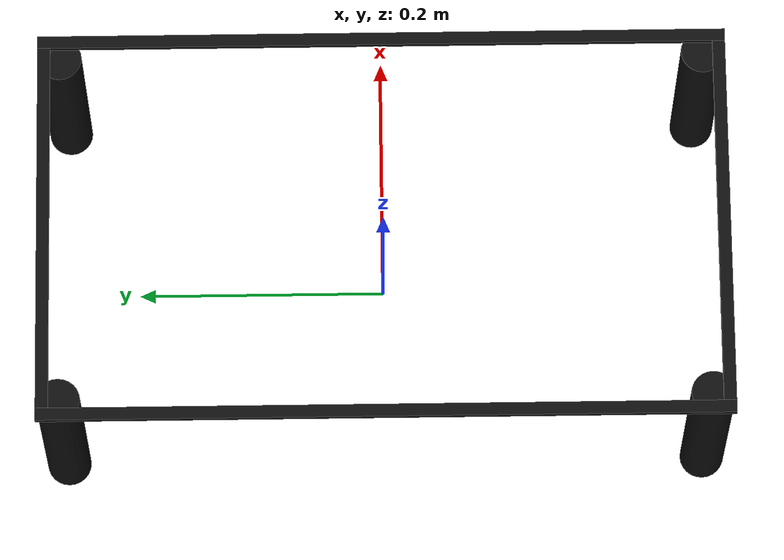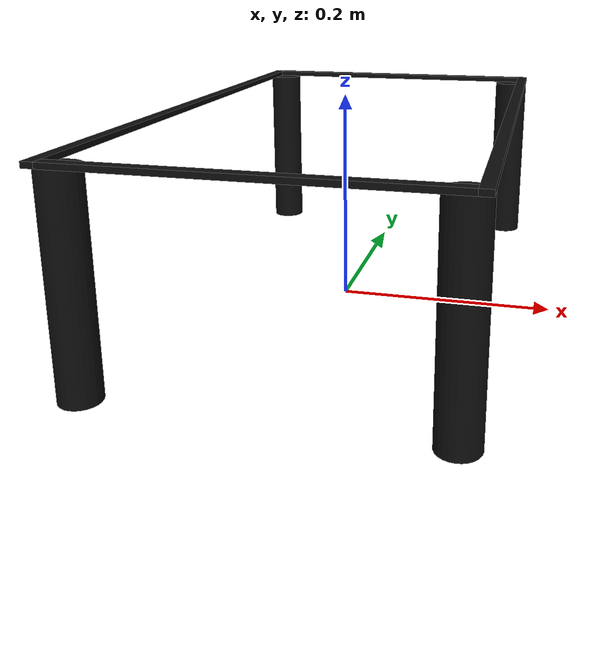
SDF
<?xml version="1.0" ?>
<sdf version="1.5">
  <model name="rescue_step_l">
    <static>True</static>
    <link name="link">
      <collision name="plate">
        <pose>0 0 0.1855  0 0 0</pose>
        <geometry>
          <box> <size> 0.32 0.55 0.005 </size> </box>
        </geometry>
      </collision>
      <collision name="leg0">
        <pose>0.1425 0.2575 0.0915  0 0 0</pose>
        <geometry>
          <cylinder>
            <radius>0.0175</radius>
            <length>0.183</length>
          </cylinder>
        </geometry>
      </collision>
      <collision name="leg1">
        <pose>-0.1425 0.2575 0.0915  0 0 0</pose>
        <geometry>
          <cylinder>
            <radius>0.0175</radius>
            <length>0.183</length>
          </cylinder>
        </geometry>
      </collision>
      <collision name="leg2">
        <pose>0.1425 -0.2575 0.0915  0 0 0</pose>
        <geometry>
          <cylinder>
            <radius>0.0175</radius>
            <length>0.183</length>
          </cylinder>
        </geometry>
      </collision>
      <collision name="leg3">
        <pose>-0.1425 -0.2575 0.0915  0 0 0</pose>
        <geometry>
          <cylinder>
            <radius>0.0175</radius>
            <length>0.183</length>
          </cylinder>
        </geometry>
      </collision>
      <visual name="plate0">
        <pose>0.155 0 0.1855  0 0 0</pose>
        <geometry>
          <box> <size> 0.01 0.55 0.005 </size> </box>
        </geometry>
        <material>
          <ambient> .05 .05 .05 1</ambient>
          <diffuse> .05 .05 .05 1</diffuse>
          <specular>0.1 0.1 0.1 1</specular>
        </material>
      </visual>
      <visual name="plate1">
        <pose>-0.155 0 0.1855  0 0 0</pose>
        <geometry>
          <box> <size> 0.01 0.55 0.005 </size> </box>
        </geometry>
        <material>
          <ambient> .05 .05 .05 1</ambient>
          <diffuse> .05 .05 .05 1</diffuse>
          <specular>0.1 0.1 0.1 1</specular>
        </material>
      </visual>
      <visual name="plate2">
        <pose>0 0.27 0.1855  0 0 0</pose>
        <geometry>
          <box> <size> 0.3 0.01 0.005 </size> </box>
        </geometry>
        <material>
          <ambient> .05 .05 .05 1</ambient>
          <diffuse> .05 .05 .05 1</diffuse>
          <specular>0.1 0.1 0.1 1</specular>
        </material>
      </visual>
      <visual name="plate3">
        <pose>0 -0.27 0.1855  0 0 0</pose>
        <geometry>
          <box> <size> 0.3 0.01 0.005 </size> </box>
        </geometry>
        <material>
          <ambient> .05 .05 .05 1</ambient>
          <diffuse> .05 .05 .05 1</diffuse>
          <specular>0.1 0.1 0.1 1</specular>
        </material>
      </visual>
      <visual name="leg0">
        <pose>0.1425 0.2575 0.0915  0 0 0</pose>
        <geometry>
          <cylinder>
            <radius>0.0175</radius>
            <length>0.183</length>
          </cylinder>
        </geometry>
        <material>
          <ambient> .05 .05 .05 1</ambient>
          <diffuse> .05 .05 .05 1</diffuse>
          <specular>0.1 0.1 0.1 1</specular>
        </material>
      </visual>
      <visual name="leg1">
        <pose>-0.1425 0.2575 0.0915  0 0 0</pose>
        <geometry>
          <cylinder>
            <radius>0.0175</radius>
            <length>0.183</length>
          </cylinder>
        </geometry>
        <material>
          <ambient> .05 .05 .05 1</ambient>
          <diffuse> .05 .05 .05 1</diffuse>
          <specular>0.1 0.1 0.1 1</specular>
        </material>
      </visual>
      <visual name="leg2">
        <pose>0.1425 -0.2575 0.0915  0 0 0</pose>
        <geometry>
          <cylinder>
            <radius>0.0175</radius>
            <length>0.183</length>
          </cylinder>
        </geometry>
        <material>
          <ambient> .05 .05 .05 1</ambient>
          <diffuse> .05 .05 .05 1</diffuse>
          <specular>0.1 0.1 0.1 1</specular>
        </material>
      </visual>
      <visual name="leg3">
        <pose>-0.1425 -0.2575 0.0915  0 0 0</pose>
        <geometry>
          <cylinder>
            <radius>0.0175</radius>
            <length>0.183</length>
          </cylinder>
        </geometry>
        <material>
          <ambient> .05 .05 .05 1</ambient>
          <diffuse> .05 .05 .05 1</diffuse>
          <specular>0.1 0.1 0.1 1</specular>
        </material>
      </visual>
    </link>
  </model>
</sdf>
